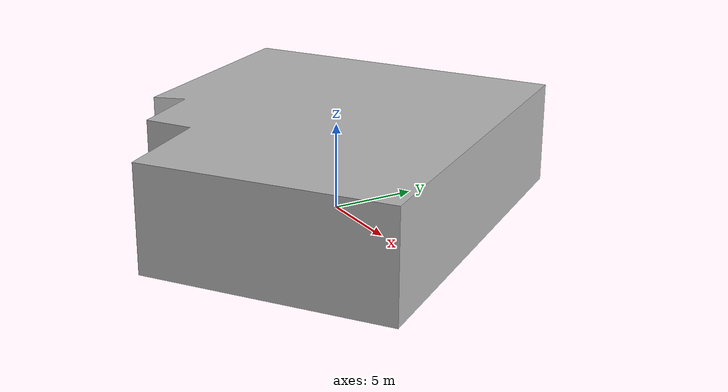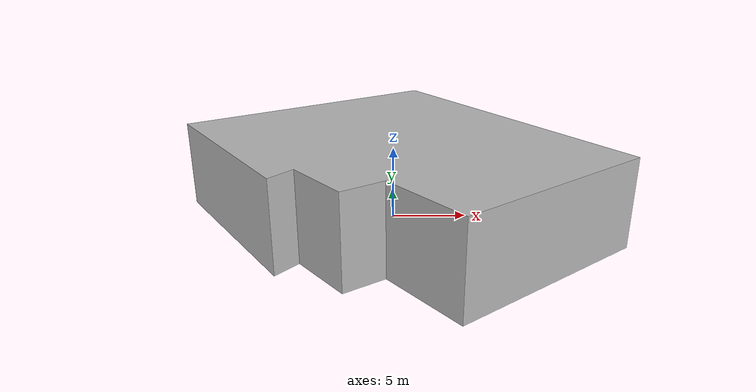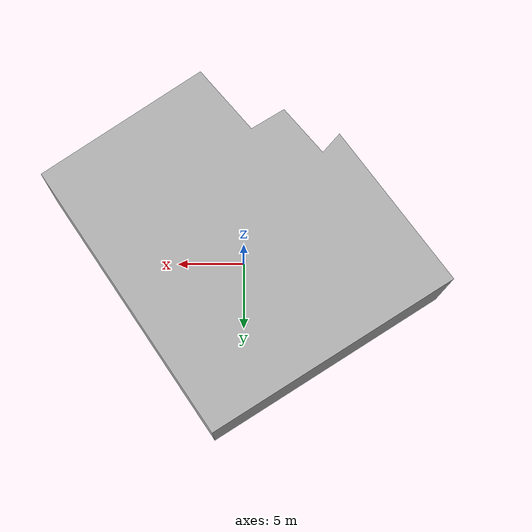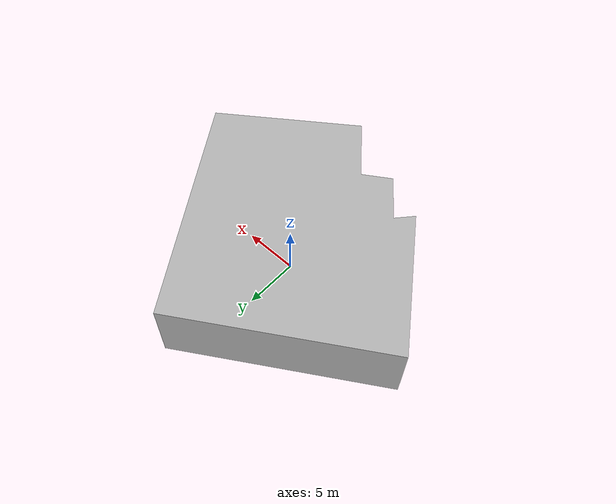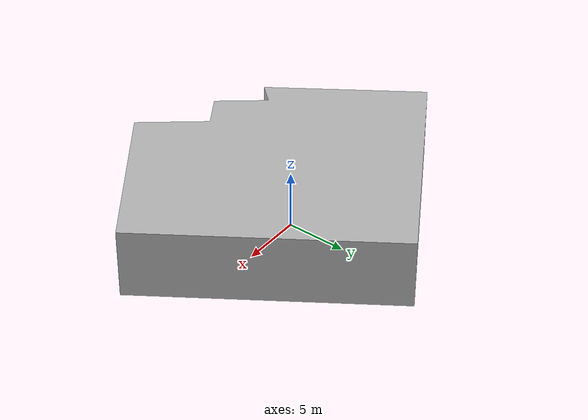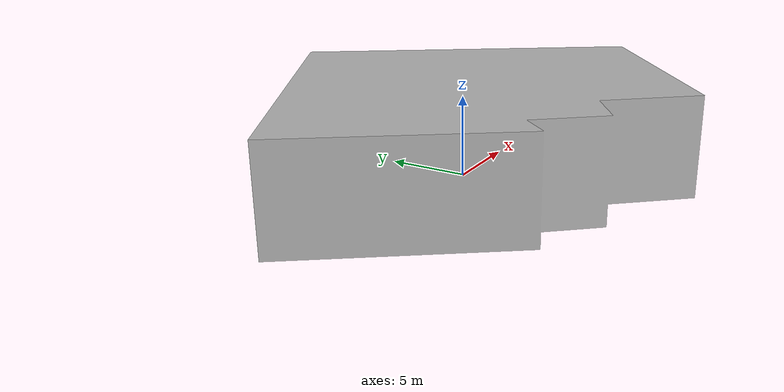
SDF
<?xml version="1.0" ?>
<sdf version="1.7">
  <model name="building_0911_actual_a_casa">
    <static>true</static>
    <link name="building_link">
      <visual name="building_visual">
        <geometry>
          <mesh>
            <uri>model://building_0911_actual_a_casa/meshes/construction_0911_actual_A_Casa_h6m.obj</uri>
          </mesh>
        </geometry>
      </visual>
    <collision name="building_collision">
      <geometry>
        <mesh>
          <uri>model://building_0911_actual_a_casa/meshes/construction_0911_actual_A_Casa_h6m.obj</uri>
        </mesh>
      </geometry>
    </collision>
    </link>
  </model>
</sdf>
